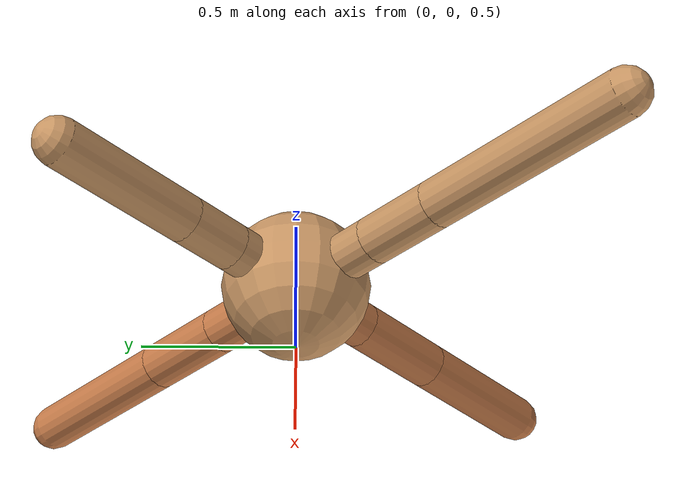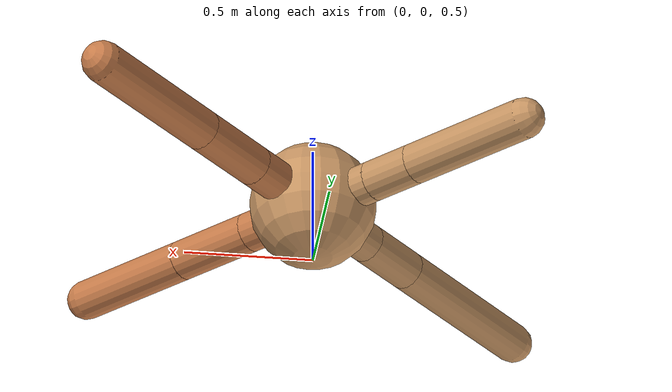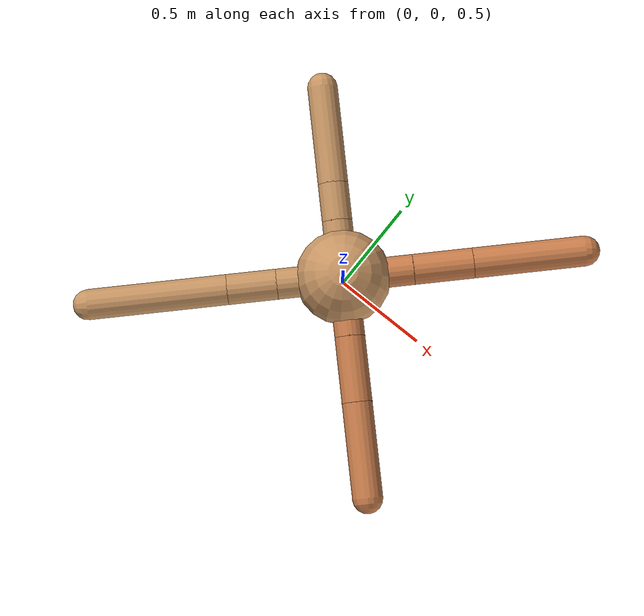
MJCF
<mujoco model="ant">
  <compiler angle="degree" coordinate="local" inertiafromgeom="true" />
  <option integrator="RK4" timestep="0.01" />
  <custom>
    <numeric data="0.0 0.0 0.55 1.0 0.0 0.0 0.0 0.0 1.0 0.0 -1.0 0.0 -1.0 0.0 1.0" name="init_qpos" />
  </custom>
  <default>
    <joint armature="1" damping="1" limited="true" />
    <geom conaffinity="0" condim="3" density="5.0" friction="1.5 0.1 0.1" margin="0.01" rgba="0.8 0.6 0.4 1" />
  </default>
  <worldbody>
    <body name="torso" pos="0 0 0.75">
      <geom name="torso_geom" pos="0 0 0" size="0.25" type="sphere" />

      <body name="front_left_leg" pos="0 0 0">
        <geom fromto="0.0 0.0 0.0 0.2602392255147073 0.2602392255147073 0.0" name="aux_1_geom" size="0.08" type="capsule" rgba=".8 .5 .3 1" />
        <body name="aux_1" pos="0.2602392255147073 0.2602392255147073 0.0">
          <joint axis="0 0 1" name="hip_1" pos="0.0 0.0 0.0" range="-40 40" type="hinge" />
          <geom fromto="0.0 0.0 0.0 0.22257340323498048 0.22257340323498048 0.0" name="left_leg_geom" size="0.08" type="capsule" rgba=".8 .5 .3 1" />
          <body pos="0.22257340323498048 0.22257340323498048 0.0" name="front_left_foot">
            <joint axis="-1 1 0" name="ankle_1" pos="0.0 0.0 0.0" range="30 100" type="hinge" />
            <geom fromto="0.0 0.0 0.0 0.41637358462097107 0.41637358462097107 0.0" name="left_ankle_geom" size="0.08" type="capsule" rgba=".8 .5 .3 1" />
          </body>
        </body>
      </body>
      <body name="front_right_leg" pos="0 0 0">
        <geom fromto="0.0 0.0 0.0 -0.20935102103413794 0.20935102103413794 0.0" name="aux_2_geom" size="0.08" type="capsule" />
        <body name="aux_2" pos="-0.20935102103413794 0.20935102103413794 0.0">
          <joint axis="0 0 1" name="hip_2" pos="0.0 0.0 0.0" range="-40 40" type="hinge" />
          <geom fromto="0.0 0.0 0.0 -0.14139322198915358 0.14139322198915358 0.0" name="right_leg_geom" size="0.08" type="capsule" />
          <body pos="-0.14139322198915358 0.14139322198915358 0.0" name="front_right_foot">
            <joint axis="1 1 0" name="ankle_2" pos="0.0 0.0 0.0" range="-100 -30" type="hinge" />
            <geom fromto="0.0 0.0 0.0 -0.36546526867669055 0.36546526867669055 0.0" name="right_ankle_geom" size="0.08" type="capsule" />
          </body>
        </body>
      </body>
      <body name="left_back_leg" pos="0 0 0">
        <geom fromto="0.0 0.0 0.0 -0.24634584908391247 -0.24634584908391247 0.0" name="aux_3_geom" size="0.08" type="capsule" />
        <body name="aux_3" pos="-0.24634584908391247 -0.24634584908391247 0.0">
          <joint axis="0 0 1" name="hip_3" pos="0.0 0.0 0.0" range="-40 40" type="hinge" />
          <geom fromto="0.0 0.0 0.0 -0.18428017018200943 -0.18428017018200943 0.0" name="back_leg_geom" size="0.08" type="capsule" />
          <body pos="-0.18428017018200943 -0.18428017018200943 0.0" name="left_back_foot">
            <joint axis="-1 1 0" name="ankle_3" pos="0.0 0.0 0.0" range="-100 -30" type="hinge" />
            <geom fromto="0.0 0.0 0.0 -0.51594583181781 -0.51594583181781 0.0" name="third_ankle_geom" size="0.08" type="capsule" />
          </body>
        </body>
      </body>
      <body name="right_back_leg" pos="0 0 0">
        <geom fromto="0.0 0.0 0.0 0.2226175676198454 -0.2226175676198454 0.0" name="aux_4_geom" size="0.08" type="capsule" rgba=".8 .5 .3 1" />
        <body name="aux_4" pos="0.2226175676198454 -0.2226175676198454 0.0">
          <joint axis="0 0 1" name="hip_4" pos="0.0 0.0 0.0" range="-40 40" type="hinge" />
          <geom fromto="0.0 0.0 0.0 0.24387829433134717 -0.24387829433134717 0.0" name="rightback_leg_geom" size="0.08" type="capsule" rgba=".8 .5 .3 1" />
          <body pos="0.24387829433134717 -0.24387829433134717 0.0" name="right_back_foot">
            <joint axis="1 1 0" name="ankle_4" pos="0.0 0.0 0.0" range="30 100" type="hinge" />
            <geom fromto="0.0 0.0 0.0 0.3531141711227901 -0.3531141711227901 0.0" name="fourth_ankle_geom" size="0.08" type="capsule" rgba=".8 .5 .3 1" />
          </body>
        </body>
      </body>
    </body>
  </worldbody>
  <actuator>
    <motor ctrllimited="true" ctrlrange="-1.0 1.0" joint="hip_4" gear="150" />
    <motor ctrllimited="true" ctrlrange="-1.0 1.0" joint="ankle_4" gear="150" />
    <motor ctrllimited="true" ctrlrange="-1.0 1.0" joint="hip_1" gear="150" />
    <motor ctrllimited="true" ctrlrange="-1.0 1.0" joint="ankle_1" gear="150" />
    <motor ctrllimited="true" ctrlrange="-1.0 1.0" joint="hip_2" gear="150" />
    <motor ctrllimited="true" ctrlrange="-1.0 1.0" joint="ankle_2" gear="150" />
    <motor ctrllimited="true" ctrlrange="-1.0 1.0" joint="hip_3" gear="150" />
    <motor ctrllimited="true" ctrlrange="-1.0 1.0" joint="ankle_3" gear="150" />
  </actuator>
</mujoco>
